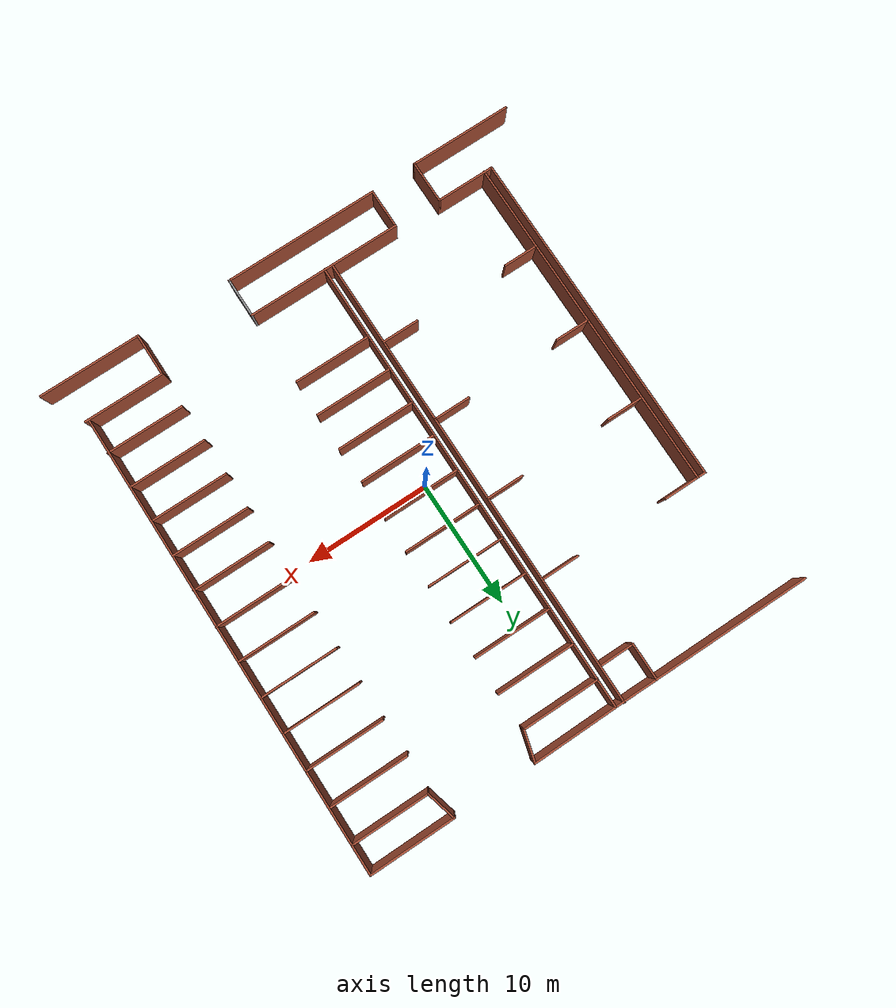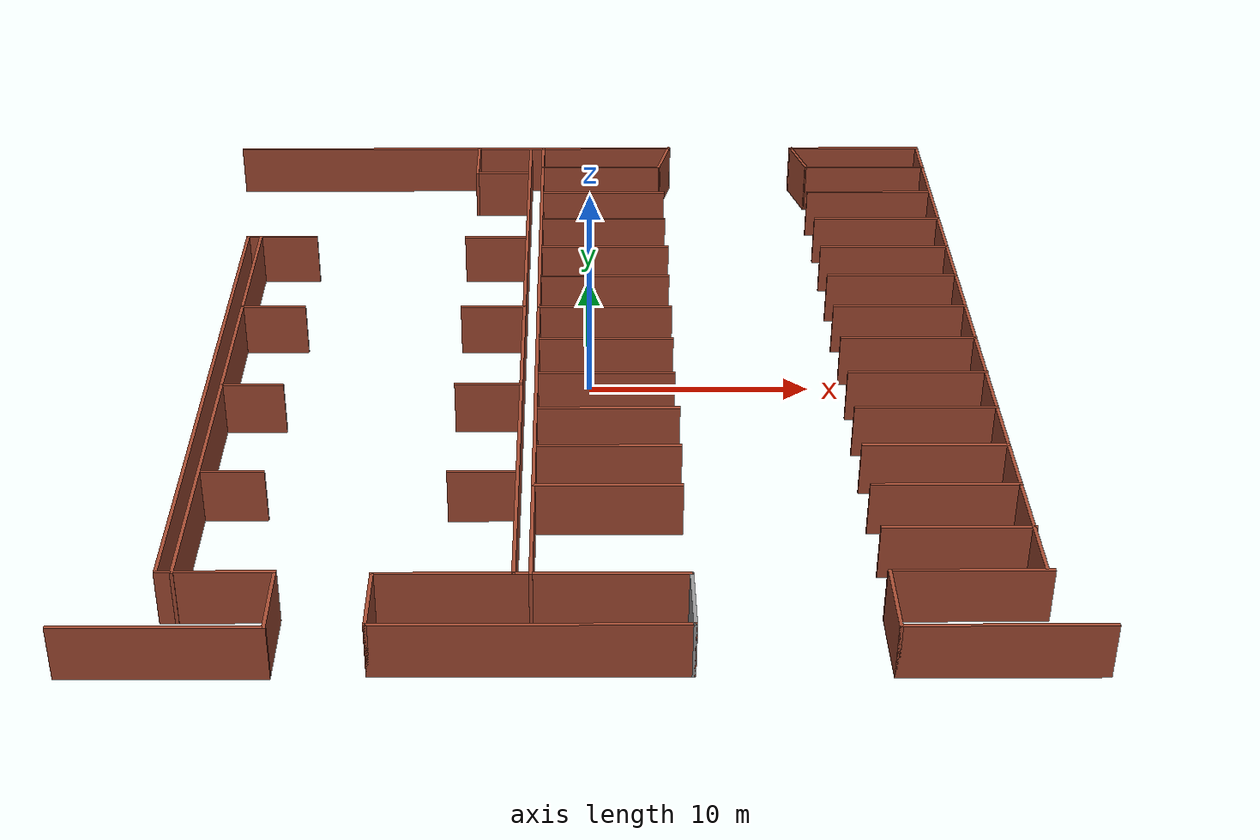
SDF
<sdf version='1.6'>
  <world name='default'>
    <light name='sun' type='directional'>
      <cast_shadows>1</cast_shadows>
      <pose frame=''>0 0 10 0 -0 0</pose>
      <diffuse>0.8 0.8 0.8 1</diffuse>
      <specular>0.1 0.1 0.1 1</specular>
      <attenuation>
        <range>1000</range>
        <constant>0.9</constant>
        <linear>0.01</linear>
        <quadratic>0.001</quadratic>
      </attenuation>
      <direction>-0.5 0.5 -1</direction>
    </light>
    <model name='Parking_Lot'>
      <pose frame=''>-0.392479 -0.065356 0 0 -0 0</pose>
      <link name='Wall_102'>
        <collision name='Wall_102_Collision'>
          <geometry>
            <box>
              <size>6.25 0.15 2.5</size>
            </box>
          </geometry>
          <pose frame=''>0 0 1.25 0 -0 0</pose>
        </collision>
        <visual name='Wall_102_Visual'>
          <pose frame=''>0 0 1.25 0 -0 0</pose>
          <geometry>
            <box>
              <size>6.25 0.15 2.5</size>
            </box>
          </geometry>
          <material>
            <script>
              <uri>file://media/materials/scripts/gazebo.material</uri>
              <name>Gazebo/Bricks</name>
            </script>
            <ambient>1 1 1 1</ambient>
          </material>
        </visual>
        <pose frame=''>1.15387 15.0074 0 0 -0 0</pose>
      </link>
      <link name='Wall_104'>
        <collision name='Wall_104_Collision'>
          <geometry>
            <box>
              <size>6.25 0.15 2.5</size>
            </box>
          </geometry>
          <pose frame=''>0 0 1.25 0 -0 0</pose>
        </collision>
        <visual name='Wall_104_Visual'>
          <pose frame=''>0 0 1.25 0 -0 0</pose>
          <geometry>
            <box>
              <size>6.25 0.15 2.5</size>
            </box>
          </geometry>
          <material>
            <script>
              <uri>file://media/materials/scripts/gazebo.material</uri>
              <name>Gazebo/Bricks</name>
            </script>
            <ambient>1 1 1 1</ambient>
          </material>
        </visual>
        <pose frame=''>1.10826 12.1164 0 0 -0 0</pose>
      </link>
      <link name='Wall_113'>
        <collision name='Wall_113_Collision'>
          <geometry>
            <box>
              <size>37 0.15 2.5</size>
            </box>
          </geometry>
          <pose frame=''>0 0 1.25 0 -0 0</pose>
        </collision>
        <visual name='Wall_113_Visual'>
          <pose frame=''>0 0 1.25 0 -0 0</pose>
          <geometry>
            <box>
              <size>37 0.15 2.5</size>
            </box>
          </geometry>
          <material>
            <script>
              <uri>file://media/materials/scripts/gazebo.material</uri>
              <name>Gazebo/Bricks</name>
            </script>
            <ambient>1 1 1 1</ambient>
          </material>
        </visual>
        <pose frame=''>17.9826 1.75295 0 0 0 -1.5708</pose>
      </link>
      <link name='Wall_115'>
        <collision name='Wall_115_Collision'>
          <geometry>
            <box>
              <size>6.25 0.15 2.5</size>
            </box>
          </geometry>
          <pose frame=''>0 0 1.25 0 -0 0</pose>
        </collision>
        <visual name='Wall_115_Visual'>
          <pose frame=''>0 0 1.25 0 -0 0</pose>
          <geometry>
            <box>
              <size>6.25 0.15 2.5</size>
            </box>
          </geometry>
          <material>
            <script>
              <uri>file://media/materials/scripts/gazebo.material</uri>
              <name>Gazebo/Bricks</name>
            </script>
            <ambient>1 1 1 1</ambient>
          </material>
        </visual>
        <pose frame=''>14.9235 17.8827 0 0 -0 3.14159</pose>
      </link>
      <link name='Wall_124'>
        <collision name='Wall_124_Collision'>
          <geometry>
            <box>
              <size>6.25 0.15 2.5</size>
            </box>
          </geometry>
          <pose frame=''>0 0 1.25 0 -0 0</pose>
        </collision>
        <visual name='Wall_124_Visual'>
          <pose frame=''>0 0 1.25 0 -0 0</pose>
          <geometry>
            <box>
              <size>6.25 0.15 2.5</size>
            </box>
          </geometry>
          <material>
            <script>
              <uri>file://media/materials/scripts/gazebo.material</uri>
              <name>Gazebo/Bricks</name>
            </script>
            <ambient>1 1 1 1</ambient>
          </material>
        </visual>
        <pose frame=''>14.7857 15.028 0 0 -0 3.14159</pose>
      </link>
      <link name='Wall_126'>
        <collision name='Wall_126_Collision'>
          <geometry>
            <box>
              <size>6.25 0.15 2.5</size>
            </box>
          </geometry>
          <pose frame=''>0 0 1.25 0 -0 0</pose>
        </collision>
        <visual name='Wall_126_Visual'>
          <pose frame=''>0 0 1.25 0 -0 0</pose>
          <geometry>
            <box>
              <size>6.25 0.15 2.5</size>
            </box>
          </geometry>
          <material>
            <script>
              <uri>file://media/materials/scripts/gazebo.material</uri>
              <name>Gazebo/Bricks</name>
            </script>
            <ambient>1 1 1 1</ambient>
          </material>
        </visual>
        <pose frame=''>14.8771 12.1212 0 0 -0 3.14159</pose>
      </link>
      <link name='Wall_128'>
        <collision name='Wall_128_Collision'>
          <geometry>
            <box>
              <size>6.25 0.15 2.5</size>
            </box>
          </geometry>
          <pose frame=''>0 0 1.25 0 -0 0</pose>
        </collision>
        <visual name='Wall_128_Visual'>
          <pose frame=''>0 0 1.25 0 -0 0</pose>
          <geometry>
            <box>
              <size>6.25 0.15 2.5</size>
            </box>
          </geometry>
          <material>
            <script>
              <uri>file://media/materials/scripts/gazebo.material</uri>
              <name>Gazebo/Bricks</name>
            </script>
            <ambient>1 1 1 1</ambient>
          </material>
        </visual>
        <pose frame=''>1.17406 9.18813 0 0 -0 0</pose>
      </link>
      <link name='Wall_130'>
        <collision name='Wall_130_Collision'>
          <geometry>
            <box>
              <size>6.25 0.15 2.5</size>
            </box>
          </geometry>
          <pose frame=''>0 0 1.25 0 -0 0</pose>
        </collision>
        <visual name='Wall_130_Visual'>
          <pose frame=''>0 0 1.25 0 -0 0</pose>
          <geometry>
            <box>
              <size>6.25 0.15 2.5</size>
            </box>
          </geometry>
          <material>
            <script>
              <uri>file://media/materials/scripts/gazebo.material</uri>
              <name>Gazebo/Bricks</name>
            </script>
            <ambient>1 1 1 1</ambient>
          </material>
        </visual>
        <pose frame=''>14.8973 9.18813 0 0 -0 3.14159</pose>
      </link>
      <link name='Wall_133'>
        <collision name='Wall_133_Collision'>
          <geometry>
            <box>
              <size>6.25 0.15 2.5</size>
            </box>
          </geometry>
          <pose frame=''>0 0 1.25 0 -0 0</pose>
        </collision>
        <visual name='Wall_133_Visual'>
          <pose frame=''>0 0 1.25 0 -0 0</pose>
          <geometry>
            <box>
              <size>6.25 0.15 2.5</size>
            </box>
          </geometry>
          <material>
            <script>
              <uri>file://media/materials/scripts/gazebo.material</uri>
              <name>Gazebo/Bricks</name>
            </script>
            <ambient>1 1 1 1</ambient>
          </material>
        </visual>
        <pose frame=''>1.09834 6.25944 0 0 -0 0</pose>
      </link>
      <link name='Wall_135'>
        <collision name='Wall_135_Collision'>
          <geometry>
            <box>
              <size>6.25 0.15 2.5</size>
            </box>
          </geometry>
          <pose frame=''>0 0 1.25 0 -0 0</pose>
        </collision>
        <visual name='Wall_135_Visual'>
          <pose frame=''>0 0 1.25 0 -0 0</pose>
          <geometry>
            <box>
              <size>6.25 0.15 2.5</size>
            </box>
          </geometry>
          <material>
            <script>
              <uri>file://media/materials/scripts/gazebo.material</uri>
              <name>Gazebo/Bricks</name>
            </script>
            <ambient>1 1 1 1</ambient>
          </material>
        </visual>
        <pose frame=''>1.12924 3.3746 0 0 -0 0</pose>
      </link>
      <link name='Wall_137'>
        <collision name='Wall_137_Collision'>
          <geometry>
            <box>
              <size>6.25 0.15 2.5</size>
            </box>
          </geometry>
          <pose frame=''>0 0 1.25 0 -0 0</pose>
        </collision>
        <visual name='Wall_137_Visual'>
          <pose frame=''>0 0 1.25 0 -0 0</pose>
          <geometry>
            <box>
              <size>6.25 0.15 2.5</size>
            </box>
          </geometry>
          <material>
            <script>
              <uri>file://media/materials/scripts/gazebo.material</uri>
              <name>Gazebo/Bricks</name>
            </script>
            <ambient>1 1 1 1</ambient>
          </material>
        </visual>
        <pose frame=''>14.9322 6.31724 0 0 -0 3.14159</pose>
      </link>
      <link name='Wall_139'>
        <collision name='Wall_139_Collision'>
          <geometry>
            <box>
              <size>6.25 0.15 2.5</size>
            </box>
          </geometry>
          <pose frame=''>0 0 1.25 0 -0 0</pose>
        </collision>
        <visual name='Wall_139_Visual'>
          <pose frame=''>0 0 1.25 0 -0 0</pose>
          <geometry>
            <box>
              <size>6.25 0.15 2.5</size>
            </box>
          </geometry>
          <material>
            <script>
              <uri>file://media/materials/scripts/gazebo.material</uri>
              <name>Gazebo/Bricks</name>
            </script>
            <ambient>1 1 1 1</ambient>
          </material>
        </visual>
        <pose frame=''>14.9322 3.40135 0 0 -0 3.14159</pose>
      </link>
      <link name='Wall_142'>
        <collision name='Wall_142_Collision'>
          <geometry>
            <box>
              <size>6.25 0.15 2.5</size>
            </box>
          </geometry>
          <pose frame=''>0 0 1.25 0 -0 0</pose>
        </collision>
        <visual name='Wall_142_Visual'>
          <pose frame=''>0 0 1.25 0 -0 0</pose>
          <geometry>
            <box>
              <size>6.25 0.15 2.5</size>
            </box>
          </geometry>
          <material>
            <script>
              <uri>file://media/materials/scripts/gazebo.material</uri>
              <name>Gazebo/Bricks</name>
            </script>
            <ambient>1 1 1 1</ambient>
          </material>
        </visual>
        <pose frame=''>1.07574 0.512216 0 0 -0 0</pose>
      </link>
      <link name='Wall_146'>
        <collision name='Wall_146_Collision'>
          <geometry>
            <box>
              <size>6.25 0.15 2.5</size>
            </box>
          </geometry>
          <pose frame=''>0 0 1.25 0 -0 0</pose>
        </collision>
        <visual name='Wall_146_Visual'>
          <pose frame=''>0 0 1.25 0 -0 0</pose>
          <geometry>
            <box>
              <size>6.25 0.15 2.5</size>
            </box>
          </geometry>
          <material>
            <script>
              <uri>file://media/materials/scripts/gazebo.material</uri>
              <name>Gazebo/Bricks</name>
            </script>
            <ambient>1 1 1 1</ambient>
          </material>
        </visual>
        <pose frame=''>14.9589 0.538967 0 0 -0 3.14159</pose>
      </link>
      <link name='Wall_148'>
        <collision name='Wall_148_Collision'>
          <geometry>
            <box>
              <size>6.25 0.15 2.5</size>
            </box>
          </geometry>
          <pose frame=''>0 0 1.25 0 -0 0</pose>
        </collision>
        <visual name='Wall_148_Visual'>
          <pose frame=''>0 0 1.25 0 -0 0</pose>
          <geometry>
            <box>
              <size>6.25 0.15 2.5</size>
            </box>
          </geometry>
          <material>
            <script>
              <uri>file://media/materials/scripts/gazebo.material</uri>
              <name>Gazebo/Bricks</name>
            </script>
            <ambient>1 1 1 1</ambient>
          </material>
        </visual>
        <pose frame=''>1.04899 -2.45717 0 0 -0 0</pose>
      </link>
      <link name='Wall_150'>
        <collision name='Wall_150_Collision'>
          <geometry>
            <box>
              <size>6.25 0.15 2.5</size>
            </box>
          </geometry>
          <pose frame=''>0 0 1.25 0 -0 0</pose>
        </collision>
        <visual name='Wall_150_Visual'>
          <pose frame=''>0 0 1.25 0 -0 0</pose>
          <geometry>
            <box>
              <size>6.25 0.15 2.5</size>
            </box>
          </geometry>
          <material>
            <script>
              <uri>file://media/materials/scripts/gazebo.material</uri>
              <name>Gazebo/Bricks</name>
            </script>
            <ambient>1 1 1 1</ambient>
          </material>
        </visual>
        <pose frame=''>14.9589 -2.43042 0 0 -0 3.14159</pose>
      </link>
      <link name='Wall_152'>
        <collision name='Wall_152_Collision'>
          <geometry>
            <box>
              <size>6.25 0.15 2.5</size>
            </box>
          </geometry>
          <pose frame=''>0 0 1.25 0 -0 0</pose>
        </collision>
        <visual name='Wall_152_Visual'>
          <pose frame=''>0 0 1.25 0 -0 0</pose>
          <geometry>
            <box>
              <size>6.25 0.15 2.5</size>
            </box>
          </geometry>
          <material>
            <script>
              <uri>file://media/materials/scripts/gazebo.material</uri>
              <name>Gazebo/Bricks</name>
            </script>
            <ambient>1 1 1 1</ambient>
          </material>
        </visual>
        <pose frame=''>14.9322 -5.29281 0 0 -0 3.14159</pose>
      </link>
      <link name='Wall_154'>
        <collision name='Wall_154_Collision'>
          <geometry>
            <box>
              <size>6.25 0.15 2.5</size>
            </box>
          </geometry>
          <pose frame=''>0 0 1.25 0 -0 0</pose>
        </collision>
        <visual name='Wall_154_Visual'>
          <pose frame=''>0 0 1.25 0 -0 0</pose>
          <geometry>
            <box>
              <size>6.25 0.15 2.5</size>
            </box>
          </geometry>
          <material>
            <script>
              <uri>file://media/materials/scripts/gazebo.material</uri>
              <name>Gazebo/Bricks</name>
            </script>
            <ambient>1 1 1 1</ambient>
          </material>
        </visual>
        <pose frame=''>1.14361 -5.28659 0 0 -0 0</pose>
      </link>
      <link name='Wall_156'>
        <collision name='Wall_156_Collision'>
          <geometry>
            <box>
              <size>6.25 0.15 2.5</size>
            </box>
          </geometry>
          <pose frame=''>0 0 1.25 0 -0 0</pose>
        </collision>
        <visual name='Wall_156_Visual'>
          <pose frame=''>0 0 1.25 0 -0 0</pose>
          <geometry>
            <box>
              <size>6.25 0.15 2.5</size>
            </box>
          </geometry>
          <material>
            <script>
              <uri>file://media/materials/scripts/gazebo.material</uri>
              <name>Gazebo/Bricks</name>
            </script>
            <ambient>1 1 1 1</ambient>
          </material>
        </visual>
        <pose frame=''>1.10786 -8.20577 0 0 -0 0</pose>
      </link>
      <link name='Wall_158'>
        <collision name='Wall_158_Collision'>
          <geometry>
            <box>
              <size>6.25 0.15 2.5</size>
            </box>
          </geometry>
          <pose frame=''>0 0 1.25 0 -0 0</pose>
        </collision>
        <visual name='Wall_158_Visual'>
          <pose frame=''>0 0 1.25 0 -0 0</pose>
          <geometry>
            <box>
              <size>6.25 0.15 2.5</size>
            </box>
          </geometry>
          <material>
            <script>
              <uri>file://media/materials/scripts/gazebo.material</uri>
              <name>Gazebo/Bricks</name>
            </script>
            <ambient>1 1 1 1</ambient>
          </material>
        </visual>
        <pose frame=''>1.06133 -11.067 0 0 -0 0</pose>
      </link>
      <link name='Wall_160'>
        <collision name='Wall_160_Collision'>
          <geometry>
            <box>
              <size>6.25 0.15 2.5</size>
            </box>
          </geometry>
          <pose frame=''>0 0 1.25 0 -0 0</pose>
        </collision>
        <visual name='Wall_160_Visual'>
          <pose frame=''>0 0 1.25 0 -0 0</pose>
          <geometry>
            <box>
              <size>6.25 0.15 2.5</size>
            </box>
          </geometry>
          <material>
            <script>
              <uri>file://media/materials/scripts/gazebo.material</uri>
              <name>Gazebo/Bricks</name>
            </script>
            <ambient>1 1 1 1</ambient>
          </material>
        </visual>
        <pose frame=''>14.9192 -8.16748 0 0 -0 3.14159</pose>
      </link>
      <link name='Wall_162'>
        <collision name='Wall_162_Collision'>
          <geometry>
            <box>
              <size>6.25 0.15 2.5</size>
            </box>
          </geometry>
          <pose frame=''>0 0 1.25 0 -0 0</pose>
        </collision>
        <visual name='Wall_162_Visual'>
          <pose frame=''>0 0 1.25 0 -0 0</pose>
          <geometry>
            <box>
              <size>6.25 0.15 2.5</size>
            </box>
          </geometry>
          <material>
            <script>
              <uri>file://media/materials/scripts/gazebo.material</uri>
              <name>Gazebo/Bricks</name>
            </script>
            <ambient>1 1 1 1</ambient>
          </material>
        </visual>
        <pose frame=''>14.9351 -11.0545 0 0 -0 3.14159</pose>
      </link>
      <link name='Wall_164'>
        <collision name='Wall_164_Collision'>
          <geometry>
            <box>
              <size>6.25 0.15 2.5</size>
            </box>
          </geometry>
          <pose frame=''>0 0 1.25 0 -0 0</pose>
        </collision>
        <visual name='Wall_164_Visual'>
          <pose frame=''>0 0 1.25 0 -0 0</pose>
          <geometry>
            <box>
              <size>6.25 0.15 2.5</size>
            </box>
          </geometry>
          <material>
            <script>
              <uri>file://media/materials/scripts/gazebo.material</uri>
              <name>Gazebo/Bricks</name>
            </script>
            <ambient>1 1 1 1</ambient>
          </material>
        </visual>
        <pose frame=''>15.0055 -14.0096 0 0 -0 3.14159</pose>
      </link>
      <link name='Wall_168'>
        <collision name='Wall_168_Collision'>
          <geometry>
            <box>
              <size>27.25 0.15 2.5</size>
            </box>
          </geometry>
          <pose frame=''>0 0 1.25 0 -0 0</pose>
        </collision>
        <visual name='Wall_168_Visual'>
          <pose frame=''>0 0 1.25 0 -0 0</pose>
          <geometry>
            <box>
              <size>27.25 0.15 2.5</size>
            </box>
          </geometry>
          <material>
            <script>
              <uri>file://media/materials/scripts/gazebo.material</uri>
              <name>Gazebo/Bricks</name>
            </script>
            <ambient>1 1 1 1</ambient>
          </material>
        </visual>
        <pose frame=''>-16.4826 -3.29567 0 0 0 -1.5708</pose>
      </link>
      <link name='Wall_170'>
        <collision name='Wall_170_Collision'>
          <geometry>
            <box>
              <size>4.75 0.15 2.5</size>
            </box>
          </geometry>
          <pose frame=''>0 0 1.25 0 -0 0</pose>
        </collision>
        <visual name='Wall_170_Visual'>
          <pose frame=''>0 0 1.25 0 -0 0</pose>
          <geometry>
            <box>
              <size>4.75 0.15 2.5</size>
            </box>
          </geometry>
          <material>
            <script>
              <uri>file://media/materials/scripts/gazebo.material</uri>
              <name>Gazebo/Bricks</name>
            </script>
            <ambient>1 1 1 1</ambient>
          </material>
        </visual>
        <pose frame=''>-14.1826 -16.8457 0 0 -0 0</pose>
      </link>
      <link name='Wall_171'>
        <collision name='Wall_171_Collision'>
          <geometry>
            <box>
              <size>3.5 0.15 2.5</size>
            </box>
          </geometry>
          <pose frame=''>0 0 1.25 0 -0 0</pose>
        </collision>
        <visual name='Wall_171_Visual'>
          <pose frame=''>0 0 1.25 0 -0 0</pose>
          <geometry>
            <box>
              <size>3.5 0.15 2.5</size>
            </box>
          </geometry>
          <material>
            <script>
              <uri>file://media/materials/scripts/gazebo.material</uri>
              <name>Gazebo/Bricks</name>
            </script>
            <ambient>1 1 1 1</ambient>
          </material>
        </visual>
        <pose frame=''>-11.8826 -18.5207 0 0 0 -1.5708</pose>
      </link>
      <link name='Wall_174'>
        <collision name='Wall_174_Collision'>
          <geometry>
            <box>
              <size>8.25 0.15 2.5</size>
            </box>
          </geometry>
          <pose frame=''>0 0 1.25 0 -0 0</pose>
        </collision>
        <visual name='Wall_174_Visual'>
          <pose frame=''>0 0 1.25 0 -0 0</pose>
          <geometry>
            <box>
              <size>8.25 0.15 2.5</size>
            </box>
          </geometry>
          <material>
            <script>
              <uri>file://media/materials/scripts/gazebo.material</uri>
              <name>Gazebo/Bricks</name>
            </script>
            <ambient>1 1 1 1</ambient>
          </material>
        </visual>
        <pose frame=''>-15.9326 -20.1957 0 0 -0 3.14159</pose>
      </link>
      <link name='Wall_176'>
        <collision name='Wall_176_Collision'>
          <geometry>
            <box>
              <size>27.25 0.15 2.5</size>
            </box>
          </geometry>
          <pose frame=''>0 0 1.25 0 -0 0</pose>
        </collision>
        <visual name='Wall_176_Visual'>
          <pose frame=''>0 0 1.25 0 -0 0</pose>
          <geometry>
            <box>
              <size>27.25 0.15 2.5</size>
            </box>
          </geometry>
          <material>
            <script>
              <uri>file://media/materials/scripts/gazebo.material</uri>
              <name>Gazebo/Bricks</name>
            </script>
            <ambient>1 1 1 1</ambient>
          </material>
        </visual>
        <pose frame=''>-15.8538 -3.31903 0 0 -0 1.5708</pose>
      </link>
      <link name='Wall_178'>
        <collision name='Wall_178_Collision'>
          <geometry>
            <box>
              <size>3.5 0.15 2.5</size>
            </box>
          </geometry>
          <pose frame=''>0 0 1.25 0 -0 0</pose>
        </collision>
        <visual name='Wall_178_Visual'>
          <pose frame=''>0 0 1.25 0 -0 0</pose>
          <geometry>
            <box>
              <size>3.5 0.15 2.5</size>
            </box>
          </geometry>
          <material>
            <script>
              <uri>file://media/materials/scripts/gazebo.material</uri>
              <name>Gazebo/Bricks</name>
            </script>
            <ambient>1 1 1 1</ambient>
          </material>
        </visual>
        <pose frame=''>-14.8076 10.2543 0 0 -0 0</pose>
      </link>
      <link name='Wall_180'>
        <collision name='Wall_180_Collision'>
          <geometry>
            <box>
              <size>3 0.15 2.5</size>
            </box>
          </geometry>
          <pose frame=''>0 0 1.25 0 -0 0</pose>
        </collision>
        <visual name='Wall_180_Visual'>
          <pose frame=''>0 0 1.25 0 -0 0</pose>
          <geometry>
            <box>
              <size>3 0.15 2.5</size>
            </box>
          </geometry>
          <material>
            <script>
              <uri>file://media/materials/scripts/gazebo.material</uri>
              <name>Gazebo/Bricks</name>
            </script>
            <ambient>1 1 1 1</ambient>
          </material>
        </visual>
        <pose frame=''>-14.3858 3.37589 0 0 -0 0</pose>
      </link>
      <link name='Wall_184'>
        <collision name='Wall_184_Collision'>
          <geometry>
            <box>
              <size>2.75 0.15 2.5</size>
            </box>
          </geometry>
          <pose frame=''>0 0 1.25 0 -0 0</pose>
        </collision>
        <visual name='Wall_184_Visual'>
          <pose frame=''>0 0 1.25 0 -0 0</pose>
          <geometry>
            <box>
              <size>2.75 0.15 2.5</size>
            </box>
          </geometry>
          <material>
            <script>
              <uri>file://media/materials/scripts/gazebo.material</uri>
              <name>Gazebo/Bricks</name>
            </script>
            <ambient>1 1 1 1</ambient>
          </material>
        </visual>
        <pose frame=''>-14.491 -3.42295 0 0 -0 0</pose>
      </link>
      <link name='Wall_186'>
        <collision name='Wall_186_Collision'>
          <geometry>
            <box>
              <size>2.75 0.15 2.5</size>
            </box>
          </geometry>
          <pose frame=''>0 0 1.25 0 -0 0</pose>
        </collision>
        <visual name='Wall_186_Visual'>
          <pose frame=''>0 0 1.25 0 -0 0</pose>
          <geometry>
            <box>
              <size>2.75 0.15 2.5</size>
            </box>
          </geometry>
          <material>
            <script>
              <uri>file://media/materials/scripts/gazebo.material</uri>
              <name>Gazebo/Bricks</name>
            </script>
            <ambient>1 1 1 1</ambient>
          </material>
        </visual>
        <pose frame=''>-14.491 -10.0717 0 0 -0 0</pose>
      </link>
      <link name='Wall_188'>
        <collision name='Wall_188_Collision'>
          <geometry>
            <box>
              <size>3 0.15 2.5</size>
            </box>
          </geometry>
          <pose frame=''>0 0 1.25 0 -0 0</pose>
        </collision>
        <visual name='Wall_188_Visual'>
          <pose frame=''>0 0 1.25 0 -0 0</pose>
          <geometry>
            <box>
              <size>3 0.15 2.5</size>
            </box>
          </geometry>
          <material>
            <script>
              <uri>file://media/materials/scripts/gazebo.material</uri>
              <name>Gazebo/Bricks</name>
            </script>
            <ambient>1 1 1 1</ambient>
          </material>
        </visual>
        <pose frame=''>-4.09452 -10.1166 0 0 -0 3.14159</pose>
      </link>
      <link name='Wall_190'>
        <collision name='Wall_190_Collision'>
          <geometry>
            <box>
              <size>3 0.15 2.5</size>
            </box>
          </geometry>
          <pose frame=''>0 0 1.25 0 -0 0</pose>
        </collision>
        <visual name='Wall_190_Visual'>
          <pose frame=''>0 0 1.25 0 -0 0</pose>
          <geometry>
            <box>
              <size>3 0.15 2.5</size>
            </box>
          </geometry>
          <material>
            <script>
              <uri>file://media/materials/scripts/gazebo.material</uri>
              <name>Gazebo/Bricks</name>
            </script>
            <ambient>1 1 1 1</ambient>
          </material>
        </visual>
        <pose frame=''>-4.09776 -3.36894 0 0 -0 3.14159</pose>
      </link>
      <link name='Wall_192'>
        <collision name='Wall_192_Collision'>
          <geometry>
            <box>
              <size>3 0.15 2.5</size>
            </box>
          </geometry>
          <pose frame=''>0 0 1.25 0 -0 0</pose>
        </collision>
        <visual name='Wall_192_Visual'>
          <pose frame=''>0 0 1.25 0 -0 0</pose>
          <geometry>
            <box>
              <size>3 0.15 2.5</size>
            </box>
          </geometry>
          <material>
            <script>
              <uri>file://media/materials/scripts/gazebo.material</uri>
              <name>Gazebo/Bricks</name>
            </script>
            <ambient>1 1 1 1</ambient>
          </material>
        </visual>
        <pose frame=''>-4.12436 3.38751 0 0 -0 3.14159</pose>
      </link>
      <link name='Wall_196'>
        <collision name='Wall_196_Collision'>
          <geometry>
            <box>
              <size>2.75 0.15 2.5</size>
            </box>
          </geometry>
          <pose frame=''>0 0 1.25 0 -0 0</pose>
        </collision>
        <visual name='Wall_196_Visual'>
          <pose frame=''>0 0 1.25 0 -0 0</pose>
          <geometry>
            <box>
              <size>2.75 0.15 2.5</size>
            </box>
          </geometry>
          <material>
            <script>
              <uri>file://media/materials/scripts/gazebo.material</uri>
              <name>Gazebo/Bricks</name>
            </script>
            <ambient>1 1 1 1</ambient>
          </material>
        </visual>
        <pose frame=''>-4.1025 17.2649 0 0 -0 3.14159</pose>
      </link>
      <link name='Wall_197'>
        <collision name='Wall_197_Collision'>
          <geometry>
            <box>
              <size>3 0.15 2.5</size>
            </box>
          </geometry>
          <pose frame=''>0 0 1.25 0 -0 0</pose>
        </collision>
        <visual name='Wall_197_Visual'>
          <pose frame=''>0 0 1.25 0 -0 0</pose>
          <geometry>
            <box>
              <size>3 0.15 2.5</size>
            </box>
          </geometry>
          <material>
            <script>
              <uri>file://media/materials/scripts/gazebo.material</uri>
              <name>Gazebo/Bricks</name>
            </script>
            <ambient>1 1 1 1</ambient>
          </material>
        </visual>
        <pose frame=''>-5.4025 18.6899 0 0 -0 1.5708</pose>
      </link>
      <link name='Wall_199'>
        <collision name='Wall_199_Collision'>
          <geometry>
            <box>
              <size>3 0.15 2.5</size>
            </box>
          </geometry>
          <pose frame=''>0 0 1.25 0 -0 0</pose>
        </collision>
        <visual name='Wall_199_Visual'>
          <pose frame=''>0 0 1.25 0 -0 0</pose>
          <geometry>
            <box>
              <size>3 0.15 2.5</size>
            </box>
          </geometry>
          <material>
            <script>
              <uri>file://media/materials/scripts/gazebo.material</uri>
              <name>Gazebo/Bricks</name>
            </script>
            <ambient>1 1 1 1</ambient>
          </material>
        </visual>
        <pose frame=''>-4.22023 10.1922 0 0 -0 3.14159</pose>
      </link>
      <link name='Wall_206'>
        <collision name='Wall_206_Collision'>
          <geometry>
            <box>
              <size>37.25 0.15 2.5</size>
            </box>
          </geometry>
          <pose frame=''>0 0 1.25 0 -0 0</pose>
        </collision>
        <visual name='Wall_206_Visual'>
          <pose frame=''>0 0 1.25 0 -0 0</pose>
          <geometry>
            <box>
              <size>37.25 0.15 2.5</size>
            </box>
          </geometry>
          <material>
            <script>
              <uri>file://media/materials/scripts/gazebo.material</uri>
              <name>Gazebo/Bricks</name>
            </script>
            <ambient>1 1 1 1</ambient>
          </material>
        </visual>
        <pose frame=''>-2.65561 1.60739 0 0 0 -1.5708</pose>
      </link>
      <link name='Wall_208'>
        <collision name='Wall_208_Collision'>
          <geometry>
            <box>
              <size>37.25 0.15 2.5</size>
            </box>
          </geometry>
          <pose frame=''>0 0 1.25 0 -0 0</pose>
        </collision>
        <visual name='Wall_208_Visual'>
          <pose frame=''>0 0 1.25 0 -0 0</pose>
          <geometry>
            <box>
              <size>37.25 0.15 2.5</size>
            </box>
          </geometry>
          <material>
            <script>
              <uri>file://media/materials/scripts/gazebo.material</uri>
              <name>Gazebo/Bricks</name>
            </script>
            <ambient>1 1 1 1</ambient>
          </material>
        </visual>
        <pose frame=''>-1.99396 1.56237 0 0 -0 1.5708</pose>
      </link>
      <link name='Wall_213'>
        <collision name='Wall_213_Collision'>
          <geometry>
            <box>
              <size>2.5 0.15 2.5</size>
            </box>
          </geometry>
          <pose frame=''>0 0 1.25 0 -0 0</pose>
        </collision>
        <visual name='Wall_213_Visual'>
          <pose frame=''>0 0 1.25 0 -0 0</pose>
          <geometry>
            <box>
              <size>2.5 0.15 2.5</size>
            </box>
          </geometry>
          <material>
            <script>
              <uri>file://media/materials/scripts/gazebo.material</uri>
              <name>Gazebo/Bricks</name>
            </script>
            <ambient>1 1 1 1</ambient>
          </material>
        </visual>
        <pose frame=''>4.4023 19.0438 0 0 -0 1.309</pose>
      </link>
      <link name='Wall_215'>
        <collision name='Wall_215_Collision'>
          <geometry>
            <box>
              <size>2.5 0.15 2.5</size>
            </box>
          </geometry>
          <pose frame=''>0 0 1.25 0 -0 0</pose>
        </collision>
        <visual name='Wall_215_Visual'>
          <pose frame=''>0 0 1.25 0 -0 0</pose>
          <geometry>
            <box>
              <size>2.5 0.15 2.5</size>
            </box>
          </geometry>
          <material>
            <script>
              <uri>file://media/materials/scripts/gazebo.material</uri>
              <name>Gazebo/Bricks</name>
            </script>
            <ambient>1 1 1 1</ambient>
          </material>
        </visual>
        <pose frame=''>11.5694 19.0177 0 0 -0 1.8326</pose>
      </link>
      <link name='Wall_218'>
        <collision name='Wall_218_Collision'>
          <geometry>
            <box>
              <size>6.86735 0.15 2.5</size>
            </box>
          </geometry>
          <pose frame=''>0 0 1.25 0 -0 0</pose>
        </collision>
        <visual name='Wall_218_Visual'>
          <pose frame=''>0 0 1.25 0 -0 0</pose>
          <geometry>
            <box>
              <size>6.86735 0.15 2.5</size>
            </box>
          </geometry>
          <material>
            <script>
              <uri>file://media/materials/scripts/gazebo.material</uri>
              <name>Gazebo/Bricks</name>
            </script>
            <ambient>1 1 1 1</ambient>
          </material>
        </visual>
        <pose frame=''>14.624 20.1653 0 0 -0 0.003767</pose>
      </link>
      <link name='Wall_220'>
        <collision name='Wall_220_Collision'>
          <geometry>
            <box>
              <size>6.85071 0.15 2.5</size>
            </box>
          </geometry>
          <pose frame=''>0 0 1.25 0 -0 0</pose>
        </collision>
        <visual name='Wall_220_Visual'>
          <pose frame=''>0 0 1.25 0 -0 0</pose>
          <geometry>
            <box>
              <size>6.85071 0.15 2.5</size>
            </box>
          </geometry>
          <material>
            <script>
              <uri>file://media/materials/scripts/gazebo.material</uri>
              <name>Gazebo/Bricks</name>
            </script>
            <ambient>1 1 1 1</ambient>
          </material>
        </visual>
        <pose frame=''>1.35623 20.1456 0 0 0 -3.13168</pose>
      </link>
      <link name='Wall_222'>
        <collision name='Wall_222_Collision'>
          <geometry>
            <box>
              <size>3.55854 0.15 2.5</size>
            </box>
          </geometry>
          <pose frame=''>0 0 1.25 0 -0 0</pose>
        </collision>
        <visual name='Wall_222_Visual'>
          <pose frame=''>0 0 1.25 0 -0 0</pose>
          <geometry>
            <box>
              <size>3.55854 0.15 2.5</size>
            </box>
          </geometry>
          <material>
            <script>
              <uri>file://media/materials/scripts/gazebo.material</uri>
              <name>Gazebo/Bricks</name>
            </script>
            <ambient>1 1 1 1</ambient>
          </material>
        </visual>
        <pose frame=''>-3.69823 20.1136 0 0 -0 3.14085</pose>
      </link>
      <link name='Wall_224'>
        <collision name='Wall_224_Collision'>
          <geometry>
            <box>
              <size>12.75 0.15 2.5</size>
            </box>
          </geometry>
          <pose frame=''>0 0 1.25 0 -0 0</pose>
        </collision>
        <visual name='Wall_224_Visual'>
          <pose frame=''>0 0 1.25 0 -0 0</pose>
          <geometry>
            <box>
              <size>12.75 0.15 2.5</size>
            </box>
          </geometry>
          <material>
            <script>
              <uri>file://media/materials/scripts/gazebo.material</uri>
              <name>Gazebo/Bricks</name>
            </script>
            <ambient>1 1 1 1</ambient>
          </material>
        </visual>
        <pose frame=''>-11.7025 20.1149 0 0 -0 3.14159</pose>
      </link>
      <link name='Wall_65'>
        <collision name='Wall_65_Collision'>
          <geometry>
            <box>
              <size>6.5 0.15 2.5</size>
            </box>
          </geometry>
          <pose frame=''>0 0 1.25 0 -0 0</pose>
        </collision>
        <visual name='Wall_65_Visual'>
          <pose frame=''>0 0 1.25 0 -0 0</pose>
          <geometry>
            <box>
              <size>6.5 0.15 2.5</size>
            </box>
          </geometry>
          <material>
            <script>
              <uri>file://media/materials/scripts/gazebo.material</uri>
              <name>Gazebo/Bricks</name>
            </script>
            <ambient>1 1 1 1</ambient>
          </material>
        </visual>
        <pose frame=''>15.0576 -16.8112 0 0 -0 3.14159</pose>
      </link>
      <link name='Wall_66'>
        <collision name='Wall_66_Collision'>
          <geometry>
            <box>
              <size>3.5 0.15 2.5</size>
            </box>
          </geometry>
          <pose frame=''>0 0 1.25 0 -0 0</pose>
        </collision>
        <visual name='Wall_66_Visual'>
          <pose frame=''>0 0 1.25 0 -0 0</pose>
          <geometry>
            <box>
              <size>3.5 0.15 2.5</size>
            </box>
          </geometry>
          <material>
            <script>
              <uri>file://media/materials/scripts/gazebo.material</uri>
              <name>Gazebo/Bricks</name>
            </script>
            <ambient>1 1 1 1</ambient>
          </material>
        </visual>
        <pose frame=''>11.8826 -18.4862 0 0 0 -1.5708</pose>
      </link>
      <link name='Wall_67'>
        <collision name='Wall_67_Collision'>
          <geometry>
            <box>
              <size>8.25 0.15 2.5</size>
            </box>
          </geometry>
          <pose frame=''>0 0 1.25 0 -0 0</pose>
        </collision>
        <visual name='Wall_67_Visual'>
          <pose frame=''>0 0 1.25 0 -0 0</pose>
          <geometry>
            <box>
              <size>8.25 0.15 2.5</size>
            </box>
          </geometry>
          <material>
            <script>
              <uri>file://media/materials/scripts/gazebo.material</uri>
              <name>Gazebo/Bricks</name>
            </script>
            <ambient>1 1 1 1</ambient>
          </material>
        </visual>
        <pose frame=''>15.9326 -20.1612 0 0 -0 0</pose>
      </link>
      <link name='Wall_69'>
        <collision name='Wall_69_Collision'>
          <geometry>
            <box>
              <size>3.25 0.15 2.5</size>
            </box>
          </geometry>
          <pose frame=''>0 0 1.25 0 -0 0</pose>
        </collision>
        <visual name='Wall_69_Visual'>
          <pose frame=''>0 0 1.25 0 -0 0</pose>
          <geometry>
            <box>
              <size>3.25 0.15 2.5</size>
            </box>
          </geometry>
          <material>
            <script>
              <uri>file://media/materials/scripts/gazebo.material</uri>
              <name>Gazebo/Bricks</name>
            </script>
            <ambient>1 1 1 1</ambient>
          </material>
        </visual>
        <pose frame=''>-8.12622 -18.5234 0 0 0 -1.5708</pose>
      </link>
      <link name='Wall_70'>
        <collision name='Wall_70_Collision'>
          <geometry>
            <box>
              <size>12.5 0.15 2.5</size>
            </box>
          </geometry>
          <pose frame=''>0 0 1.25 0 -0 0</pose>
        </collision>
        <visual name='Wall_70_Visual'>
          <pose frame=''>0 0 1.25 0 -0 0</pose>
          <geometry>
            <box>
              <size>12.5 0.15 2.5</size>
            </box>
          </geometry>
          <material>
            <script>
              <uri>file://media/materials/scripts/gazebo.material</uri>
              <name>Gazebo/Bricks</name>
            </script>
            <ambient>1 1 1 1</ambient>
          </material>
        </visual>
        <pose frame=''>-1.95122 -20.0734 0 0 -0 0</pose>
      </link>
      <link name='Wall_73'>
        <collision name='Wall_73_Collision'>
          <geometry>
            <box>
              <size>3.25 0.15 2.5</size>
            </box>
          </geometry>
          <pose frame=''>0 0 1.25 0 -0 0</pose>
        </collision>
        <visual name='Wall_73_Visual'>
          <pose frame=''>0 0 1.25 0 -0 0</pose>
          <geometry>
            <box>
              <size>3.25 0.15 2.5</size>
            </box>
          </geometry>
          <material>
            <script>
              <uri>file://media/materials/scripts/gazebo.material</uri>
              <name>Gazebo/Grey</name>
            </script>
            <ambient>1 1 1 1</ambient>
          </material>
        </visual>
        <pose frame=''>4.22378 -18.5234 0 0 -0 1.5708</pose>
      </link>
      <link name='Wall_74'>
        <collision name='Wall_74_Collision'>
          <geometry>
            <box>
              <size>12.5 0.15 2.5</size>
            </box>
          </geometry>
          <pose frame=''>0 0 1.25 0 -0 0</pose>
        </collision>
        <visual name='Wall_74_Visual'>
          <pose frame=''>0 0 1.25 0 -0 0</pose>
          <geometry>
            <box>
              <size>12.5 0.15 2.5</size>
            </box>
          </geometry>
          <material>
            <script>
              <uri>file://media/materials/scripts/gazebo.material</uri>
              <name>Gazebo/Bricks</name>
            </script>
            <ambient>1 1 1 1</ambient>
          </material>
        </visual>
        <pose frame=''>-1.95122 -16.9734 0 0 -0 3.14159</pose>
      </link>
      <link name='Wall_94'>
        <collision name='Wall_94_Collision'>
          <geometry>
            <box>
              <size>6.25 0.15 2.5</size>
            </box>
          </geometry>
          <pose frame=''>0 0 1.25 0 -0 0</pose>
        </collision>
        <visual name='Wall_94_Visual'>
          <pose frame=''>0 0 1.25 0 -0 0</pose>
          <geometry>
            <box>
              <size>6.25 0.15 2.5</size>
            </box>
          </geometry>
          <material>
            <script>
              <uri>file://media/materials/scripts/gazebo.material</uri>
              <name>Gazebo/Bricks</name>
            </script>
            <ambient>1 1 1 1</ambient>
          </material>
        </visual>
        <pose frame=''>1.04819 17.9089 0 0 -0 3.14159</pose>
      </link>
      <static>1</static>
    </model>
    <physics type='ode'>
      <max_step_size>0.001</max_step_size>
      <real_time_factor>1</real_time_factor>
      <real_time_update_rate>1000</real_time_update_rate>
      <gravity>0 0 -9.8</gravity>
    </physics>
    <scene>
      <ambient>0.4 0.4 0.4 1</ambient>
      <background>0.7 0.7 0.7 1</background>
      <shadows>1</shadows>
    </scene>
    <spherical_coordinates>
      <surface_model>EARTH_WGS84</surface_model>
      <latitude_deg>0</latitude_deg>
      <longitude_deg>0</longitude_deg>
      <elevation>0</elevation>
      <heading_deg>0</heading_deg>
    </spherical_coordinates>
  </world>
</sdf>
